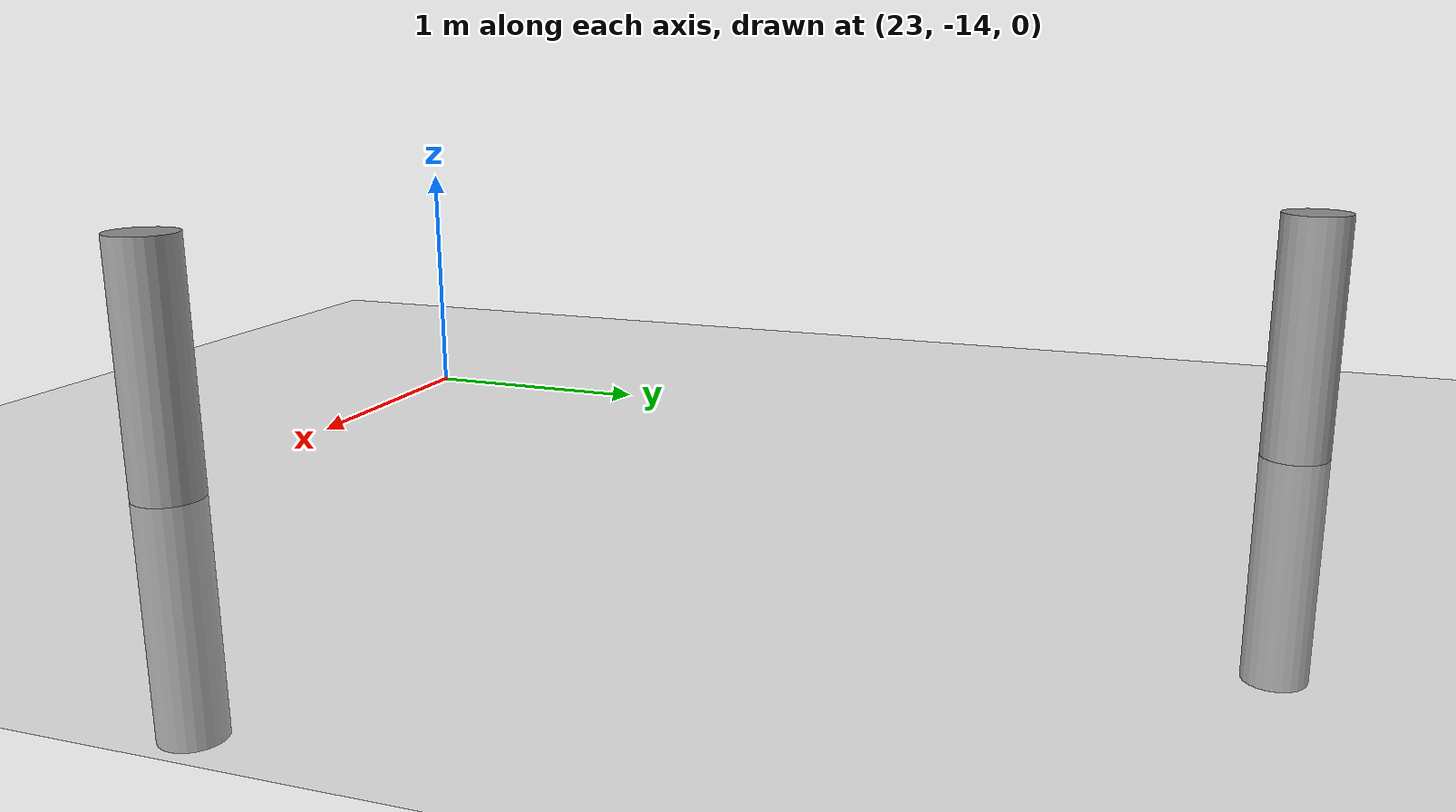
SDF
<sdf version="1.6">
 <world name="default">
  <model name="ground_plane">
   <static>1</static>
   <link name="link">
    <collision name="collision">
     <geometry><plane><normal>0 0 1</normal><size>100 100</size></plane></geometry>
     <surface><friction><ode><mu>100</mu><mu2>50</mu2></ode></friction></surface>
    </collision>
    <visual name="visual">
     <cast_shadows>0</cast_shadows>
     <geometry><plane><normal>0 0 1</normal><size>100 100</size></plane></geometry>
     <material>
      <script><uri>file://media/materials/scripts/gazebo.material</uri><name>Gazebo/Grey</name></script>
     </material>
    </visual>
   </link>
  </model>
  <model name="my_cylinder014_clone_3_0">
   <pose>23 -10 0 0 -0 0</pose>
   <link name="my_cylinder014::link">
    <inertial>
     <mass>1</mass>
     <inertia><ixx>0.145833</ixx><ixy>0</ixy><ixz>0</ixz><iyy>0.145833</iyy><iyz>0</iyz><izz>0.125</izz></inertia>
    </inertial>
    <visual name="visual">
     <geometry><cylinder><radius>0.14</radius><length>2</length></cylinder></geometry>
     <material>
      <script><name>Gazebo/Grey</name><uri>file://media/materials/scripts/gazebo.material</uri></script>
      <ambient>0.3 0.3 0.3 1</ambient>
      <diffuse>0.7 0.7 0.7 1</diffuse>
      <specular>1 0.01 0.01 1</specular>
      <emissive>0 0 0 1</emissive>
      <shader type="vertex"><normal_map>__default__</normal_map></shader>
     </material>
    </visual>
    <collision name="collision">
     <geometry><cylinder><radius>0.14</radius><length>2</length></cylinder></geometry>
     <surface>
      <friction>
       <ode><mu>1</mu><mu2>1</mu2><fdir1>0 0 0</fdir1><slip1>0</slip1><slip2>0</slip2></ode>
       <torsional>
        <coefficient>1</coefficient>
        <patch_radius>0</patch_radius>
        <surface_radius>0</surface_radius>
        <use_patch_radius>1</use_patch_radius>
        <ode><slip>0</slip></ode>
       </torsional>
      </friction>
      <bounce><restitution_coefficient>0</restitution_coefficient><threshold>1e+06</threshold></bounce>
      <contact>
       <collide_without_contact>0</collide_without_contact>
       <collide_without_contact_bitmask>1</collide_without_contact_bitmask>
       <collide_bitmask>1</collide_bitmask>
       <ode>
        <soft_cfm>0</soft_cfm>
        <soft_erp>0.2</soft_erp>
        <kp>1e+13</kp>
        <kd>1</kd>
        <max_vel>0.01</max_vel>
        <min_depth>0</min_depth>
       </ode>
       <bullet>
        <split_impulse>1</split_impulse>
        <split_impulse_penetration_threshold>-0.01</split_impulse_penetration_threshold>
        <soft_cfm>0</soft_cfm>
        <soft_erp>0.2</soft_erp>
        <kp>1e+13</kp>
        <kd>1</kd>
       </bullet>
      </contact>
     </surface>
    </collision>
   </link>
   <static>1</static>
  </model>
  <model name="my_cylinder014_clone_1_0">
   <pose>25 -14 0 0 -0 0</pose>
   <link name="my_cylinder014::link">
    <inertial>
     <mass>1</mass>
     <inertia><ixx>0.145833</ixx><ixy>0</ixy><ixz>0</ixz><iyy>0.145833</iyy><iyz>0</iyz><izz>0.125</izz></inertia>
    </inertial>
    <visual name="visual">
     <geometry><cylinder><radius>0.14</radius><length>2</length></cylinder></geometry>
     <material>
      <script><name>Gazebo/Grey</name><uri>file://media/materials/scripts/gazebo.material</uri></script>
      <ambient>0.3 0.3 0.3 1</ambient>
      <diffuse>0.7 0.7 0.7 1</diffuse>
      <specular>1 0.01 0.01 1</specular>
      <emissive>0 0 0 1</emissive>
      <shader type="vertex"><normal_map>__default__</normal_map></shader>
     </material>
    </visual>
    <collision name="collision">
     <geometry><cylinder><radius>0.14</radius><length>2</length></cylinder></geometry>
     <surface>
      <friction>
       <ode><mu>1</mu><mu2>1</mu2><fdir1>0 0 0</fdir1><slip1>0</slip1><slip2>0</slip2></ode>
       <torsional>
        <coefficient>1</coefficient>
        <patch_radius>0</patch_radius>
        <surface_radius>0</surface_radius>
        <use_patch_radius>1</use_patch_radius>
        <ode><slip>0</slip></ode>
       </torsional>
      </friction>
      <bounce><restitution_coefficient>0</restitution_coefficient><threshold>1e+06</threshold></bounce>
      <contact>
       <collide_without_contact>0</collide_without_contact>
       <collide_without_contact_bitmask>1</collide_without_contact_bitmask>
       <collide_bitmask>1</collide_bitmask>
       <ode>
        <soft_cfm>0</soft_cfm>
        <soft_erp>0.2</soft_erp>
        <kp>1e+13</kp>
        <kd>1</kd>
        <max_vel>0.01</max_vel>
        <min_depth>0</min_depth>
       </ode>
       <bullet>
        <split_impulse>1</split_impulse>
        <split_impulse_penetration_threshold>-0.01</split_impulse_penetration_threshold>
        <soft_cfm>0</soft_cfm>
        <soft_erp>0.2</soft_erp>
        <kp>1e+13</kp>
        <kd>1</kd>
       </bullet>
      </contact>
     </surface>
    </collision>
   </link>
   <static>1</static>
  </model>
  <model name="my_cylinder014_clone_1_0">
   <pose>25 -14 0 0 -0 0</pose>
   <link name="my_cylinder014::link">
    <inertial>
     <mass>1</mass>
     <inertia><ixx>0.145833</ixx><ixy>0</ixy><ixz>0</ixz><iyy>0.145833</iyy><iyz>0</iyz><izz>0.125</izz></inertia>
    </inertial>
    <visual name="visual">
     <geometry><cylinder><radius>0.14</radius><length>2</length></cylinder></geometry>
     <material>
      <script><name>Gazebo/Grey</name><uri>file://media/materials/scripts/gazebo.material</uri></script>
      <ambient>0.3 0.3 0.3 1</ambient>
      <diffuse>0.7 0.7 0.7 1</diffuse>
      <specular>1 0.01 0.01 1</specular>
      <emissive>0 0 0 1</emissive>
      <shader type="vertex"><normal_map>__default__</normal_map></shader>
     </material>
    </visual>
    <collision name="collision">
     <geometry><cylinder><radius>0.14</radius><length>2</length></cylinder></geometry>
     <surface>
      <friction>
       <ode><mu>1</mu><mu2>1</mu2><fdir1>0 0 0</fdir1><slip1>0</slip1><slip2>0</slip2></ode>
       <torsional>
        <coefficient>1</coefficient>
        <patch_radius>0</patch_radius>
        <surface_radius>0</surface_radius>
        <use_patch_radius>1</use_patch_radius>
        <ode><slip>0</slip></ode>
       </torsional>
      </friction>
      <bounce><restitution_coefficient>0</restitution_coefficient><threshold>1e+06</threshold></bounce>
      <contact>
       <collide_without_contact>0</collide_without_contact>
       <collide_without_contact_bitmask>1</collide_without_contact_bitmask>
       <collide_bitmask>1</collide_bitmask>
       <ode>
        <soft_cfm>0</soft_cfm>
        <soft_erp>0.2</soft_erp>
        <kp>1e+13</kp>
        <kd>1</kd>
        <max_vel>0.01</max_vel>
        <min_depth>0</min_depth>
       </ode>
       <bullet>
        <split_impulse>1</split_impulse>
        <split_impulse_penetration_threshold>-0.01</split_impulse_penetration_threshold>
        <soft_cfm>0</soft_cfm>
        <soft_erp>0.2</soft_erp>
        <kp>1e+13</kp>
        <kd>1</kd>
       </bullet>
      </contact>
     </surface>
    </collision>
   </link>
   <static>1</static>
  </model>
 </world>
</sdf>
